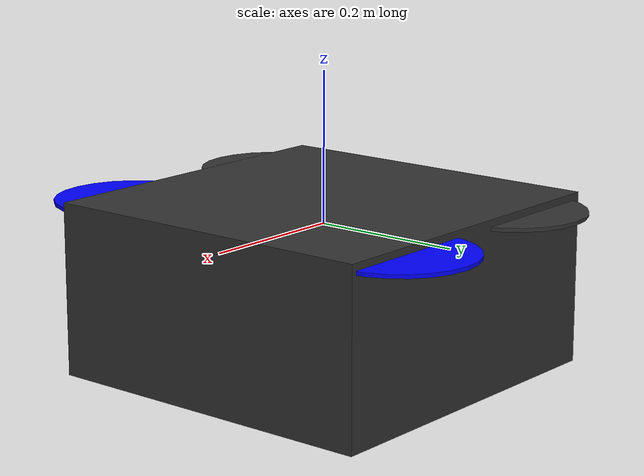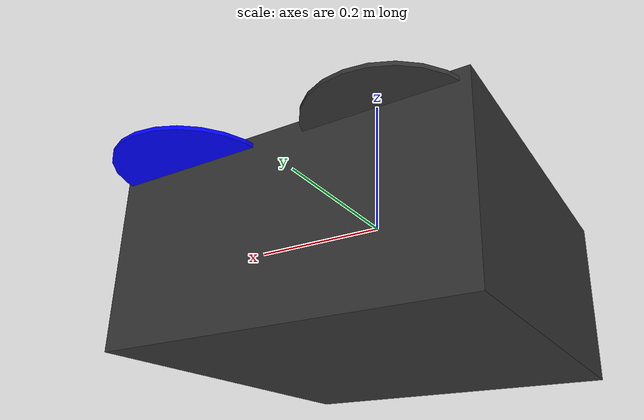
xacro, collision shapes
<?xml version='1.0'?>
<!-- 声明Xacro命名空间，根节点为robot（Xacro的标准根节点） -->
<robot name="iris_demo" xmlns:xacro="http://ros.org/wiki/xacro">
  <xacro:include filename="$(find gazebo_sim)/urdf/iris.xacro" />

  <xacro:macro name="iris_ardupilot" params="model_name iris_prefix">
    <xacro:iris_drone_model prefix="${iris_prefix}" />
    <gazebo>
        <!-- 旋翼0 叶片1 -->
        <plugin name="rotor_0_blade_1" filename="libLiftDragPlugin.so">
            <a0>0.3</a0>
            <alpha_stall>1.4</alpha_stall>
            <cla>4.2500</cla>
            <cda>0.10</cda>
            <cma>0.00</cma>
            <cla_stall>-0.025</cla_stall>
            <cda_stall>0.0</cda_stall>
            <cma_stall>0.0</cma_stall>
            <area>0.002</area>
            <air_density>1.2041</air_density>
            <cp>0.084 0 0</cp>
            <forward>0 1 0</forward>
            <upward>0 0 1</upward>
            <link_name>${model_name}::${iris_prefix}rotor_0</link_name>
        </plugin>

        <!-- 旋翼0 叶片2 -->
        <plugin name="rotor_0_blade_2" filename="libLiftDragPlugin.so">
            <a0>0.3</a0>
            <alpha_stall>1.4</alpha_stall>
            <cla>4.2500</cla>
            <cda>0.10</cda>
            <cma>0.00</cma>
            <cla_stall>-0.025</cla_stall>
            <cda_stall>0.0</cda_stall>
            <cma_stall>0.0</cma_stall>
            <area>0.002</area>
            <air_density>1.2041</air_density>
            <cp>-0.084 0 0</cp>
            <forward>0 -1 0</forward>
            <upward>0 0 1</upward>
            <link_name>${model_name}::${iris_prefix}rotor_0</link_name>
        </plugin>

        <!-- 旋翼1 叶片1 -->
        <plugin name="rotor_1_blade_1" filename="libLiftDragPlugin.so">
            <a0>0.3</a0>
            <alpha_stall>1.4</alpha_stall>
            <cla>4.2500</cla>
            <cda>0.10</cda>
            <cma>0.00</cma>
            <cla_stall>-0.025</cla_stall>
            <cda_stall>0.0</cda_stall>
            <cma_stall>0.0</cma_stall>
            <area>0.002</area>
            <air_density>1.2041</air_density>
            <cp>0.084 0 0</cp>
            <forward>0 1 0</forward>
            <upward>0 0 1</upward>
            <link_name>${model_name}::${iris_prefix}rotor_1</link_name>
        </plugin>

        <!-- 旋翼1 叶片2 -->
        <plugin name="rotor_1_blade_2" filename="libLiftDragPlugin.so">
            <a0>0.3</a0>
            <alpha_stall>1.4</alpha_stall>
            <cla>4.2500</cla>
            <cda>0.10</cda>
            <cma>0.00</cma>
            <cla_stall>-0.025</cla_stall>
            <cda_stall>0.0</cda_stall>
            <cma_stall>0.0</cma_stall>
            <area>0.002</area>
            <air_density>1.2041</air_density>
            <cp>-0.084 0 0</cp>
            <forward>0 -1 0</forward>
            <upward>0 0 1</upward>
            <link_name>${model_name}::${iris_prefix}rotor_1</link_name>
        </plugin>

        <!-- 旋翼2 叶片1 -->
        <plugin name="rotor_2_blade_1" filename="libLiftDragPlugin.so">
            <a0>0.3</a0>
            <alpha_stall>1.4</alpha_stall>
            <cla>4.2500</cla>
            <cda>0.10</cda>
            <cma>0.00</cma>
            <cla_stall>-0.025</cla_stall>
            <cda_stall>0.0</cda_stall>
            <cma_stall>0.0</cma_stall>
            <area>0.002</area>
            <air_density>1.2041</air_density>
            <cp>0.084 0 0</cp>
            <forward>0 -1 0</forward>
            <upward>0 0 1</upward>
            <link_name>${model_name}::${iris_prefix}rotor_2</link_name>
        </plugin>

        <!-- 旋翼2 叶片2 -->
        <plugin name="rotor_2_blade_2" filename="libLiftDragPlugin.so">
            <a0>0.3</a0>
            <alpha_stall>1.4</alpha_stall>
            <cla>4.2500</cla>
            <cda>0.10</cda>
            <cma>0.00</cma>
            <cla_stall>-0.025</cla_stall>
            <cda_stall>0.0</cda_stall>
            <cma_stall>0.0</cma_stall>
            <area>0.002</area>
            <air_density>1.2041</air_density>
            <cp>-0.084 0 0</cp>
            <forward>0 1 0</forward>
            <upward>0 0 1</upward>
            <link_name>${model_name}::${iris_prefix}rotor_2</link_name>
        </plugin>

        <!-- 旋翼3 叶片1 -->
        <plugin name="rotor_3_blade_1" filename="libLiftDragPlugin.so">
            <a0>0.3</a0>
            <alpha_stall>1.4</alpha_stall>
            <cla>4.2500</cla>
            <cda>0.10</cda>
            <cma>0.00</cma>
            <cla_stall>-0.025</cla_stall>
            <cda_stall>0.0</cda_stall>
            <cma_stall>0.0</cma_stall>
            <area>0.002</area>
            <air_density>1.2041</air_density>
            <cp>0.084 0 0</cp>
            <forward>0 -1 0</forward>
            <upward>0 0 1</upward>
            <link_name>${model_name}::${iris_prefix}rotor_3</link_name>
        </plugin>

        <!-- 旋翼3 叶片2 -->
        <plugin name="rotor_3_blade_2" filename="libLiftDragPlugin.so">
            <a0>0.3</a0>
            <alpha_stall>1.4</alpha_stall>
            <cla>4.2500</cla>
            <cda>0.10</cda>
            <cma>0.00</cma>
            <cla_stall>-0.025</cla_stall>
            <cda_stall>0.0</cda_stall>
            <cma_stall>0.0</cma_stall>
            <area>0.002</area>
            <air_density>1.2041</air_density>
            <cp>-0.084 0 0</cp>
            <forward>0 1 0</forward>
            <upward>0 0 1</upward>
            <link_name>${model_name}::${iris_prefix}rotor_3</link_name>
        </plugin>

        <!-- ArduPilot插件 -->
        <plugin name="arducopter_plugin" filename="libArduPilotPlugin.so">
            <fdm_addr>127.0.0.1</fdm_addr>
            <fdm_port_in>9002</fdm_port_in>
            <fdm_port_out>9003</fdm_port_out>
            <modelXYZToAirplaneXForwardZDown>0 0 0 3.141593 0 0</modelXYZToAirplaneXForwardZDown>
            <gazeboXYZToNED>0 0 0 3.141593 0 0</gazeboXYZToNED>
            <imuName>iris_demo::iris::iris/imu_link::imu_sensor</imuName>
            <connectionTimeoutMaxCount>1000</connectionTimeoutMaxCount>
            <control channel="0">
                <type>VELOCITY</type>
                <offset>0</offset>
                <p_gain>0.20</p_gain>
                <i_gain>0</i_gain>
                <d_gain>0</d_gain>
                <i_max>0</i_max>
                <i_min>0</i_min>
                <cmd_max>2.5</cmd_max>
                <cmd_min>-2.5</cmd_min>
                <jointName>iris::rotor_0_joint</jointName>
                <multiplier>838</multiplier>
                <controlVelocitySlowdownSim>1</controlVelocitySlowdownSim>
            </control>
            <control channel="1">
                <type>VELOCITY</type>
                <offset>0</offset>
                <p_gain>0.20</p_gain>
                <i_gain>0</i_gain>
                <d_gain>0</d_gain>
                <i_max>0</i_max>
                <i_min>0</i_min>
                <cmd_max>2.5</cmd_max>
                <cmd_min>-2.5</cmd_min>
                <jointName>iris::rotor_1_joint</jointName>
                <multiplier>838</multiplier>
                <controlVelocitySlowdownSim>1</controlVelocitySlowdownSim>
            </control>
            <control channel="2">
                <type>VELOCITY</type>
                <offset>0</offset>
                <p_gain>0.20</p_gain>
                <i_gain>0</i_gain>
                <d_gain>0</d_gain>
                <i_max>0</i_max>
                <i_min>0</i_min>
                <cmd_max>2.5</cmd_max>
                <cmd_min>-2.5</cmd_min>
                <jointName>iris::rotor_2_joint</jointName>
                <multiplier>-838</multiplier>
                <controlVelocitySlowdownSim>1</controlVelocitySlowdownSim>
            </control>
            <control channel="3">
                <type>VELOCITY</type>
                <offset>0</offset>
                <p_gain>0.20</p_gain>
                <i_gain>0</i_gain>
                <d_gain>0</d_gain>
                <i_max>0</i_max>
                <i_min>0</i_min>
                <cmd_max>2.5</cmd_max>
                <cmd_min>-2.5</cmd_min>
                <jointName>iris::rotor_3_joint</jointName>
                <multiplier>-838</multiplier>
                <controlVelocitySlowdownSim>1</controlVelocitySlowdownSim>
            </control>
        </plugin>
    </gazebo>
  </xacro:macro>
</robot>

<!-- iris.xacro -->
<!-- 根节点：指定机器人名称和 XACRO 命名空间 -->
<robot name="iris" xmlns:xacro="http://ros.org/wiki/xacro">

  <!-- ==================== 定义XACRO宏：封装iris无人机模型，带前缀参数避免命名冲突 ==================== -->
  <!-- 宏名称：iris_drone_model，前缀参数prefix（带默认值${iris_}，方便直接调用且符合命名规范） -->
  <xacro:macro name="iris_drone_model" params="prefix">

    <!-- ==================== 3. base_link 定义（添加前缀，避免全局冲突） ==================== -->
    <link name="${prefix}base_link">
      <inertial>
        <origin xyz="0 0 0" rpy="0 0 0"/>
        <mass value="1.5"/>
        <inertia ixx="0.008" ixy="0" ixz="0" iyy="0.015" iyz="0" izz="0.017"/>
      </inertial>

      <collision name="${prefix}base_link_collision">
        <origin xyz="0 0 -0.08" rpy="0 0 0"/>
        <geometry>
          <box size="0.47 0.47 0.23"/>
        </geometry>
      </collision>

      <visual name="${prefix}base_link_visual">
        <geometry>
          <mesh filename="model://iris_with_standoffs/meshes/iris.dae" scale="1 1 1"/>
        </geometry>
        <!-- 修正1：给material添加必填name属性，结合前缀避免冲突 -->
        <material name="${prefix}dark_grey">
          <color rgba="0.2 0.2 0.2 1"/> <!-- 近似DarkGrey的占位色，Gazebo中会被覆盖 -->
        </material>
      </visual>

      <!-- 四条腿视觉模型（添加前缀确保多实例无冲突，修正material语法） -->
      <visual name="${prefix}front_left_leg_visual">
        <origin xyz="0.123 0.22 -0.11" rpy="0 0 0"/>
        <geometry>
          <cylinder radius="0.005" length="0.17"/>
        </geometry>
        <material name="${prefix}flat_black">
          <color rgba="0 0 0 1"/> <!-- 近似FlatBlack的占位色，Gazebo中会被覆盖 -->
        </material>
      </visual>

      <visual name="${prefix}front_right_leg_visual">
        <origin xyz="0.123 -0.22 -0.11" rpy="0 0 0"/>
        <geometry>
          <cylinder radius="0.005" length="0.17"/>
        </geometry>
        <material name="${prefix}flat_black">
          <color rgba="0 0 0 1"/>
        </material>
      </visual>

      <visual name="${prefix}rear_left_leg_visual">
        <origin xyz="-0.140 0.21 -0.11" rpy="0 0 0"/>
        <geometry>
          <cylinder radius="0.005" length="0.17"/>
        </geometry>
        <material name="${prefix}flat_black">
          <color rgba="0 0 0 1"/>
        </material>
      </visual>

      <visual name="${prefix}rear_right_leg_visual">
        <origin xyz="-0.140 -0.21 -0.11" rpy="0 0 0"/>
        <geometry>
          <cylinder radius="0.005" length="0.17"/>
        </geometry>
        <material name="${prefix}flat_black">
          <color rgba="0 0 0 1"/>
        </material>
      </visual>
    </link>

    <gazebo reference="${prefix}base_link">
      <surface>
        <contact>
          <ode>
            <max_vel>100.0</max_vel>
            <min_depth>0.001</min_depth>
          </ode>
        </contact>
        <friction>
          <ode>
            <mu>1000.0</mu>
            <mu2>1000.0</mu2>
          </ode>
        </friction>
      </surface>
      <material>Gazebo/DarkGrey</material>
    </gazebo>

    <!-- ==================== 4. 里程计地面真值链接（添加前缀，保留原有层级命名，修正URDF语法） ==================== -->
    <link name="${prefix}iris/ground_truth/odometry_sensorgt_link">
      <inertial>
        <origin xyz="0 0 0" rpy="0 0 0"/>
        <mass value="0.15"/>
        <inertia ixx="0.0001" ixy="0" ixz="0" iyy="0.0002" iyz="0" izz="0.0002"/>
      </inertial>
    </link>

    <joint name="${prefix}iris/ground_truth/odometry_sensorgt_joint" type="revolute">
      <!-- 父/子link同步引用带前缀的名称，确保关联正确 -->
      <parent link="${prefix}base_link"/>
      <child link="${prefix}iris/ground_truth/odometry_sensorgt_link"/>
      <axis xyz="0 0 1"/>
      <limit lower="0" upper="0" effort="0" velocity="0"/>
      <dynamics damping="1.0"/>
    </joint>

    <!-- ==================== 5. IMU 链接（添加前缀，避免传感器和关节命名冲突） ==================== -->
    <link name="${prefix}iris/imu_link">
      <inertial>
        <origin xyz="0 0 0" rpy="0 0 0"/>
        <mass value="0.15"/>
        <inertia ixx="0.00001" ixy="0" ixz="0" iyy="0.00002" iyz="0" izz="0.00002"/>
      </inertial>
    </link>

    <!-- IMU 传感器 Gazebo 配置（传感器名称添加前缀，reference引用带前缀的IMU link） -->
    <gazebo reference="${prefix}iris/imu_link">
      <sensor name="${prefix}imu_sensor" type="imu">
        <pose>0 0 0 3.141593 0 0</pose>
        <always_on>1</always_on>
        <update_rate>1000.0</update_rate>
      </sensor>
    </gazebo>

    <joint name="${prefix}iris/imu_joint" type="revolute">
      <parent link="${prefix}base_link"/>
      <child link="${prefix}iris/imu_link"/>
      <axis xyz="0 0 1"/>
      <limit lower="0" upper="0" effort="0" velocity="0"/>
      <dynamics damping="1.0"/>
    </joint>

    <!-- ==================== 6. 四个旋翼链接（rotor 0~3，添加前缀避免多机旋翼冲突，修正语法） ==================== -->
    <!-- 旋翼 0 -->
    <link name="${prefix}rotor_0">
      <inertial>
        <origin xyz="0 0 0" rpy="0 0 0"/>
        <mass value="0.025"/>
        <inertia ixx="9.75e-06" ixy="0" ixz="0" iyy="0.000166704" iyz="0" izz="0.000167604"/>
      </inertial>

      <collision name="${prefix}rotor_0_collision">
        <origin xyz="0.13 -0.22 0.023" rpy="0 0 0"/> <!-- 迁移原link直接origin到collision -->
        <geometry>
          <cylinder radius="0.1" length="0.005"/>
        </geometry>
      </collision>

      <visual name="${prefix}rotor_0_visual">
        <origin xyz="0.13 -0.22 0.023" rpy="0 0 0"/> <!-- 迁移原link直接origin到visual，保持姿态 -->
        <geometry>
          <mesh filename="model://iris_with_standoffs/meshes/iris_prop_ccw.dae" scale="1 1 1"/>
        </geometry>
        <material name="${prefix}blue">
          <color rgba="0 0 1 1"/> <!-- 近似Blue的占位色，Gazebo中会被覆盖 -->
        </material>
      </visual>
    </link>

    <!-- 旋翼 0 Gazebo 专属配置（reference引用带前缀的rotor_0，映射材质） -->
    <gazebo reference="${prefix}rotor_0">
      <gravity>1</gravity>
      <self_collide>0</self_collide>
      <material>Gazebo/Blue</material>
    </gazebo>

    <joint name="${prefix}rotor_0_joint" type="revolute">
      <parent link="${prefix}base_link"/>
      <child link="${prefix}rotor_0"/>
      <axis xyz="0 0 1"/>
      <limit lower="-100" upper="100" effort="100.0" velocity="1000.0"/>
      <dynamics damping="0.004"/>
    </joint>

    <!-- 旋翼 1 -->
    <link name="${prefix}rotor_1">
      <inertial>
        <origin xyz="0 0 0" rpy="0 0 0"/>
        <mass value="0.025"/>
        <inertia ixx="9.75e-06" ixy="0" ixz="0" iyy="0.000166704" iyz="0" izz="0.000167604"/>
      </inertial>

      <collision name="${prefix}rotor_1_collision">
        <origin xyz="-0.13 0.2 0.023" rpy="0 0 0"/> <!-- 迁移原link直接origin到collision -->
        <geometry>
          <cylinder radius="0.1" length="0.005"/>
        </geometry>
      </collision>

      <visual name="${prefix}rotor_1_visual">
        <origin xyz="-0.13 0.2 0.023" rpy="0 0 0"/> <!-- 迁移原link直接origin到visual，保持姿态 -->
        <geometry>
          <mesh filename="model://iris_with_standoffs/meshes/iris_prop_ccw.dae" scale="1 1 1"/>
        </geometry>
        <material name="${prefix}dark_grey">
          <color rgba="0.2 0.2 0.2 1"/>
        </material>
      </visual>
    </link>

    <gazebo reference="${prefix}rotor_1">
      <gravity>1</gravity>
      <self_collide>0</self_collide>
      <material>Gazebo/DarkGrey</material>
    </gazebo>

    <joint name="${prefix}rotor_1_joint" type="revolute">
      <parent link="${prefix}base_link"/>
      <child link="${prefix}rotor_1"/>
      <axis xyz="0 0 1"/>
      <limit lower="-100" upper="100" effort="100.0" velocity="1000.0"/>
      <dynamics damping="0.004"/>
    </joint>

    <!-- 旋翼 2 -->
    <link name="${prefix}rotor_2">
      <inertial>
        <origin xyz="0 0 0" rpy="0 0 0"/>
        <mass value="0.025"/>
        <inertia ixx="9.75e-06" ixy="0" ixz="0" iyy="0.000166704" iyz="0" izz="0.000167604"/>
      </inertial>

      <collision name="${prefix}rotor_2_collision">
        <origin xyz="0.13 0.22 0.023" rpy="0 0 0"/> <!-- 迁移原link直接origin到collision -->
        <geometry>
          <cylinder radius="0.1" length="0.005"/>
        </geometry>
      </collision>

      <visual name="${prefix}rotor_2_visual">
        <origin xyz="0.13 0.22 0.023" rpy="0 0 0"/> <!-- 迁移原link直接origin到visual，保持姿态 -->
        <geometry>
          <mesh filename="model://iris_with_standoffs/meshes/iris_prop_cw.dae" scale="1 1 1"/>
        </geometry>
        <material name="${prefix}blue">
          <color rgba="0 0 1 1"/>
        </material>
      </visual>
    </link>

    <gazebo reference="${prefix}rotor_2">
      <gravity>1</gravity>
      <self_collide>0</self_collide>
      <material>Gazebo/Blue</material>
    </gazebo>

    <joint name="${prefix}rotor_2_joint" type="revolute">
      <parent link="${prefix}base_link"/>
      <child link="${prefix}rotor_2"/>
      <axis xyz="0 0 1"/>
      <limit lower="-100" upper="100" effort="100.0" velocity="1000.0"/>
      <dynamics damping="0.004"/>
    </joint>

    <!-- 旋翼 3 -->
    <link name="${prefix}rotor_3">
      <inertial>
        <origin xyz="0 0 0" rpy="0 0 0"/>
        <mass value="0.025"/>
        <inertia ixx="9.75e-06" ixy="0" ixz="0" iyy="0.000166704" iyz="0" izz="0.000167604"/>
      </inertial>

      <collision name="${prefix}rotor_3_collision">
        <origin xyz="-0.13 -0.2 0.023" rpy="0 0 0"/> <!-- 迁移原link直接origin到collision -->
        <geometry>
          <cylinder radius="0.1" length="0.005"/>
        </geometry>
      </collision>

      <visual name="${prefix}rotor_3_visual">
        <origin xyz="-0.13 -0.2 0.023" rpy="0 0 0"/> <!-- 迁移原link直接origin到visual，保持姿态 -->
        <geometry>
          <mesh filename="model://iris_with_standoffs/meshes/iris_prop_cw.dae" scale="1 1 1"/>
        </geometry>
        <material name="${prefix}dark_grey">
          <color rgba="0.2 0.2 0.2 1"/>
        </material>
      </visual>
    </link>

    <gazebo reference="${prefix}rotor_3">
      <gravity>1</gravity>
      <self_collide>0</self_collide>
      <material>Gazebo/DarkGrey</material>
    </gazebo>

    <joint name="${prefix}rotor_3_joint" type="revolute">
      <parent link="${prefix}base_link"/>
      <child link="${prefix}rotor_3"/>
      <axis xyz="0 0 1"/>
      <limit lower="-100" upper="100" effort="100.0" velocity="1000.0"/>
      <dynamics damping="0.004"/>
    </joint>

    <!-- ==================== 全局 Gazebo 配置（保留原有功能，非命名相关不修改） ==================== -->
    <gazebo>
      <static>0</static>  <!-- 非静态模型，允许运动 -->
    </gazebo>

  </xacro:macro>

  <xacro:iris_drone_model prefix="iris_prefix" />

</robot>
